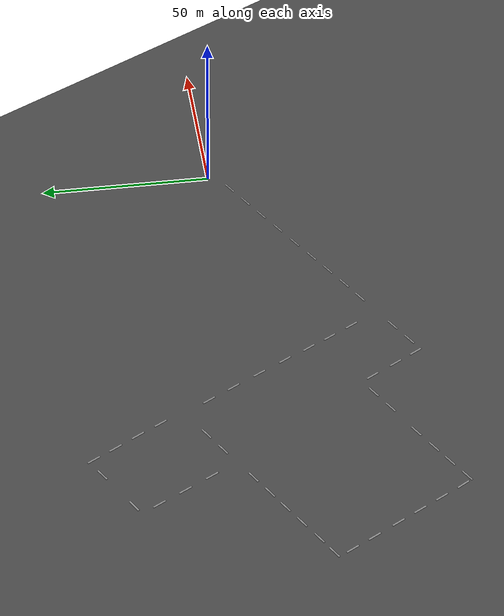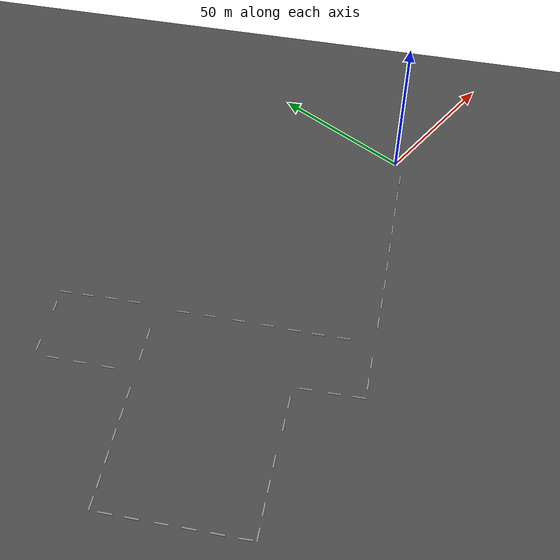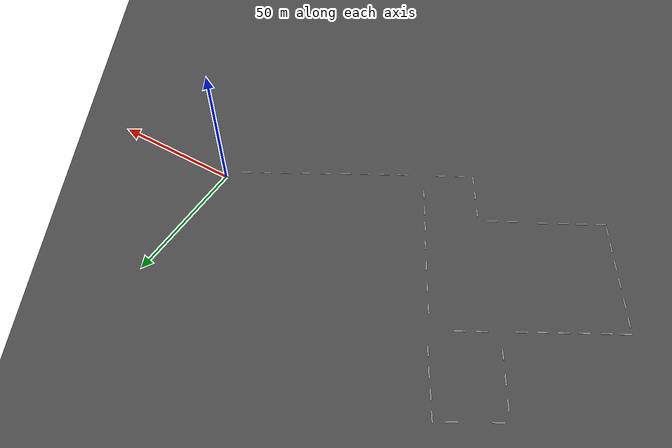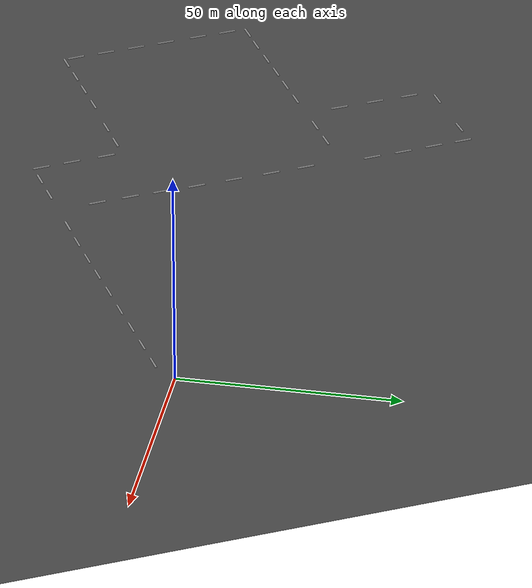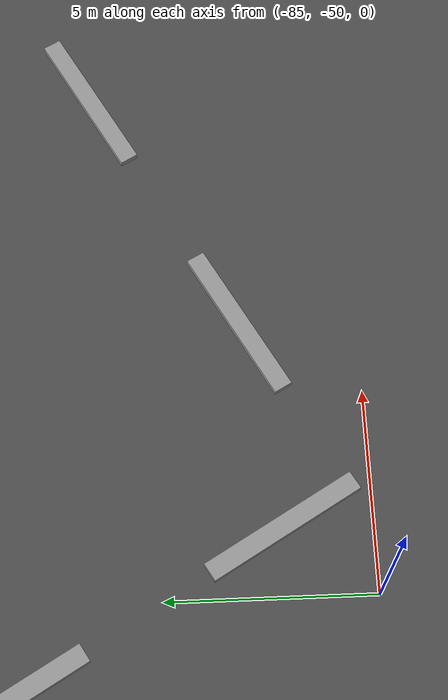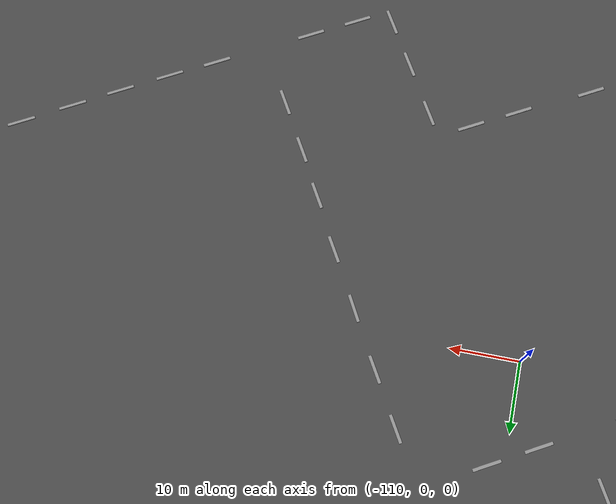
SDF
<sdf version="1.6">
 <world name="default">
  <light name="sun" type="directional">
   <pose>0 0 10 0 -0 0</pose>
   <diffuse>0.8 0.8 0.8 1</diffuse>
   <specular>0.2 0.2 0.2 1</specular>
   <attenuation>
    <range>1000</range>
    <constant>0.9</constant>
    <linear>0.01</linear>
    <quadratic>0.001</quadratic>
   </attenuation>
   <direction>-0.5 0.1 -0.9</direction>
  </light>
  <gravity>0 0 -9.8</gravity>
  <magnetic_field>6e-06 2.3e-05 -4.2e-05</magnetic_field>
  <atmosphere type="adiabatic"/>
  <physics name="default_physics" default="0" type="ode">
   <max_step_size>0.001</max_step_size>
   <real_time_factor>1</real_time_factor>
   <real_time_update_rate>1000</real_time_update_rate>
   <ode><solver><type>quick</type><iters>100</iters></solver></ode>
  </physics>
  <scene><ambient>0.4 0.4 0.4 1</ambient><background>0.7 0.7 0.7 1</background><shadows>1</shadows></scene>
  <spherical_coordinates>
   <surface_model>EARTH_WGS84</surface_model>
   <latitude_deg>10.77549</latitude_deg>
   <longitude_deg>106.65978</longitude_deg>
   <elevation>0.5</elevation>
   <heading_deg>90.0</heading_deg>
  </spherical_coordinates>
  <model name="asphalt_plane">
   <static>1</static>
   <link name="link">
    <collision name="collision"><geometry><box><size>300.002 399.998 0.1</size></box></geometry></collision>
    <visual name="visual">
     <cast_shadows>0</cast_shadows>
     <geometry><box><size>300.002 399.998 0.1</size></box></geometry>
     <material>
      <script>
       <uri>model://asphalt_plane/materials/scripts</uri>
       <uri>model://asphalt_plane/materials/textures</uri>
       <name>vrc/asphalt</name>
      </script>
     </material>
    </visual>
   </link>
   <pose>-94.7689 -9.25711 0 0 -0 0.505117</pose>
  </model>
  <model name="unit_box">
   <pose>-58.6797 -36.3175 0.134718 0 2e-06 0.510943</pose>
   <link name="link">
    <inertial>
     <mass>1</mass>
     <inertia>
      <ixx>0.166667</ixx>
      <ixy>0</ixy>
      <ixz>0</ixz>
      <iyy>0.166667</iyy>
      <iyz>0</iyz>
      <izz>0.166667</izz>
     </inertia>
    </inertial>
    <collision name="collision"><geometry><box><size>4.10992 0.470748 0.169445</size></box></geometry></collision>
    <visual name="visual">
     <geometry><box><size>4.10992 0.470748 0.169445</size></box></geometry>
     <material>
      <script><name>Gazebo/Grey</name><uri>file://media/materials/scripts/gazebo.material</uri></script>
     </material>
    </visual>
   </link>
  </model>
  <model name="unit_box_clone">
   <pose>-52.2343 -32.8002 0.134718 0 2e-06 0.510961</pose>
   <link name="link">
    <inertial>
     <mass>1</mass>
     <inertia>
      <ixx>0.166667</ixx>
      <ixy>0</ixy>
      <ixz>0</ixz>
      <iyy>0.166667</iyy>
      <iyz>0</iyz>
      <izz>0.166667</izz>
     </inertia>
    </inertial>
    <collision name="collision"><geometry><box><size>4.10992 0.423623 0.169445</size></box></geometry></collision>
    <visual name="visual">
     <geometry><box><size>4.10992 0.423623 0.169445</size></box></geometry>
     <material>
      <script><name>Gazebo/Grey</name><uri>file://media/materials/scripts/gazebo.material</uri></script>
     </material>
    </visual>
   </link>
  </model>
  <model name="unit_box_clone_clone">
   <pose>-45.605 -29.0456 0.134718 0 2e-06 0.510951</pose>
   <link name="link">
    <inertial>
     <mass>1</mass>
     <inertia>
      <ixx>0.166667</ixx>
      <ixy>0</ixy>
      <ixz>0</ixz>
      <iyy>0.166667</iyy>
      <iyz>0</iyz>
      <izz>0.166667</izz>
     </inertia>
    </inertial>
    <collision name="collision"><geometry><box><size>4.10992 0.423624 0.169445</size></box></geometry></collision>
    <visual name="visual">
     <geometry><box><size>4.10992 0.423624 0.169445</size></box></geometry>
     <material>
      <script><name>Gazebo/Grey</name><uri>file://media/materials/scripts/gazebo.material</uri></script>
     </material>
    </visual>
   </link>
  </model>
  <model name="unit_box_clone_clone_0">
   <pose>-39.235 -25.3331 0.134718 0 2e-06 0.510953</pose>
   <link name="link">
    <inertial>
     <mass>1</mass>
     <inertia>
      <ixx>0.166667</ixx>
      <ixy>0</ixy>
      <ixz>0</ixz>
      <iyy>0.166667</iyy>
      <iyz>0</iyz>
      <izz>0.166667</izz>
     </inertia>
    </inertial>
    <collision name="collision"><geometry><box><size>4.10992 0.423624 0.169445</size></box></geometry></collision>
    <visual name="visual">
     <geometry><box><size>4.10992 0.423624 0.169445</size></box></geometry>
     <material>
      <script><name>Gazebo/Grey</name><uri>file://media/materials/scripts/gazebo.material</uri></script>
     </material>
    </visual>
   </link>
  </model>
  <model name="unit_box_clone_clone_1">
   <pose>-32.4914 -21.383 0.134718 0 2e-06 0.510954</pose>
   <link name="link">
    <inertial>
     <mass>1</mass>
     <inertia>
      <ixx>0.166667</ixx>
      <ixy>0</ixy>
      <ixz>0</ixz>
      <iyy>0.166667</iyy>
      <iyz>0</iyz>
      <izz>0.166667</izz>
     </inertia>
    </inertial>
    <collision name="collision"><geometry><box><size>4.10992 0.423624 0.169445</size></box></geometry></collision>
    <visual name="visual">
     <geometry><box><size>4.10992 0.423624 0.169445</size></box></geometry>
     <material>
      <script><name>Gazebo/Grey</name><uri>file://media/materials/scripts/gazebo.material</uri></script>
     </material>
    </visual>
   </link>
  </model>
  <model name="unit_box_clone_clone_2">
   <pose>-25.515 -17.4443 0.134718 0 2e-06 0.510956</pose>
   <link name="link">
    <inertial>
     <mass>1</mass>
     <inertia>
      <ixx>0.166667</ixx>
      <ixy>0</ixy>
      <ixz>0</ixz>
      <iyy>0.166667</iyy>
      <iyz>0</iyz>
      <izz>0.166667</izz>
     </inertia>
    </inertial>
    <collision name="collision"><geometry><box><size>4.10992 0.423624 0.169445</size></box></geometry></collision>
    <visual name="visual">
     <geometry><box><size>4.10992 0.423624 0.169445</size></box></geometry>
     <material>
      <script><name>Gazebo/Grey</name><uri>file://media/materials/scripts/gazebo.material</uri></script>
     </material>
    </visual>
   </link>
  </model>
  <model name="unit_box_clone_clone_3">
   <pose>-18.7815 -13.4966 0.134718 0 2e-06 0.510957</pose>
   <link name="link">
    <inertial>
     <mass>1</mass>
     <inertia>
      <ixx>0.166667</ixx>
      <ixy>0</ixy>
      <ixz>0</ixz>
      <iyy>0.166667</iyy>
      <iyz>0</iyz>
      <izz>0.166667</izz>
     </inertia>
    </inertial>
    <collision name="collision"><geometry><box><size>4.10992 0.423624 0.169445</size></box></geometry></collision>
    <visual name="visual">
     <geometry><box><size>4.10992 0.423624 0.169445</size></box></geometry>
     <material>
      <script><name>Gazebo/Grey</name><uri>file://media/materials/scripts/gazebo.material</uri></script>
     </material>
    </visual>
   </link>
  </model>
  <model name="unit_box_clone_clone_4">
   <pose>-12.1267 -9.70191 0.134718 0 2e-06 0.510959</pose>
   <link name="link">
    <inertial>
     <mass>1</mass>
     <inertia>
      <ixx>0.166667</ixx>
      <ixy>0</ixy>
      <ixz>0</ixz>
      <iyy>0.166667</iyy>
      <iyz>0</iyz>
      <izz>0.166667</izz>
     </inertia>
    </inertial>
    <collision name="collision"><geometry><box><size>4.10992 0.423624 0.169445</size></box></geometry></collision>
    <visual name="visual">
     <geometry><box><size>4.10992 0.423624 0.169445</size></box></geometry>
     <material>
      <script><name>Gazebo/Grey</name><uri>file://media/materials/scripts/gazebo.material</uri></script>
     </material>
    </visual>
   </link>
  </model>
  <model name="unit_box_clone_clone_5">
   <pose>-5.35612 -5.84918 0.134718 0 2e-06 0.51096</pose>
   <link name="link">
    <inertial>
     <mass>1</mass>
     <inertia>
      <ixx>0.166667</ixx>
      <ixy>0</ixy>
      <ixz>0</ixz>
      <iyy>0.166667</iyy>
      <iyz>0</iyz>
      <izz>0.166667</izz>
     </inertia>
    </inertial>
    <collision name="collision"><geometry><box><size>4.10992 0.423624 0.169445</size></box></geometry></collision>
    <visual name="visual">
     <geometry><box><size>4.10992 0.423624 0.169445</size></box></geometry>
     <material>
      <script><name>Gazebo/Grey</name><uri>file://media/materials/scripts/gazebo.material</uri></script>
     </material>
    </visual>
   </link>
  </model>
  <model name="unit_box_clone_0">
   <pose>-71.6412 -43.4654 0.134718 0 2e-06 0.510938</pose>
   <link name="link">
    <inertial>
     <mass>1</mass>
     <inertia>
      <ixx>0.166667</ixx>
      <ixy>0</ixy>
      <ixz>0</ixz>
      <iyy>0.166667</iyy>
      <iyz>0</iyz>
      <izz>0.166667</izz>
     </inertia>
    </inertial>
    <collision name="collision"><geometry><box><size>4.10992 0.470749 0.169445</size></box></geometry></collision>
    <visual name="visual">
     <geometry><box><size>4.10992 0.470749 0.169445</size></box></geometry>
     <material>
      <script><name>Gazebo/Grey</name><uri>file://media/materials/scripts/gazebo.material</uri></script>
     </material>
    </visual>
   </link>
  </model>
  <model name="unit_box_clone_1">
   <pose>-78.1131 -47.0765 0.134718 0 2e-06 0.51094</pose>
   <link name="link">
    <inertial>
     <mass>1</mass>
     <inertia>
      <ixx>0.166667</ixx>
      <ixy>0</ixy>
      <ixz>0</ixz>
      <iyy>0.166667</iyy>
      <iyz>0</iyz>
      <izz>0.166667</izz>
     </inertia>
    </inertial>
    <collision name="collision"><geometry><box><size>4.10992 0.470749 0.169445</size></box></geometry></collision>
    <visual name="visual">
     <geometry><box><size>4.10992 0.470749 0.169445</size></box></geometry>
     <material>
      <script><name>Gazebo/Grey</name><uri>file://media/materials/scripts/gazebo.material</uri></script>
     </material>
    </visual>
   </link>
  </model>
  <model name="unit_box_clone_1_clone_clone_0">
   <pose>-91.3416 -34.1757 0.134718 1e-06 -2e-06 2.10461</pose>
   <link name="link">
    <inertial>
     <mass>1</mass>
     <inertia>
      <ixx>0.166667</ixx>
      <ixy>0</ixy>
      <ixz>0</ixz>
      <iyy>0.166667</iyy>
      <iyz>0</iyz>
      <izz>0.166667</izz>
     </inertia>
    </inertial>
    <collision name="collision"><geometry><box><size>4.10992 0.470749 0.169445</size></box></geometry></collision>
    <visual name="visual">
     <geometry><box><size>4.10992 0.470749 0.169445</size></box></geometry>
     <material>
      <script><name>Gazebo/Grey</name><uri>file://media/materials/scripts/gazebo.material</uri></script>
     </material>
    </visual>
   </link>
  </model>
  <model name="unit_box_clone_1_clone_0">
   <pose>-97.8327 -33.3431 0.134718 0 2e-06 0.51094</pose>
   <link name="link">
    <inertial>
     <mass>1</mass>
     <inertia>
      <ixx>0.166667</ixx>
      <ixy>0</ixy>
      <ixz>0</ixz>
      <iyy>0.166667</iyy>
      <iyz>0</iyz>
      <izz>0.166667</izz>
     </inertia>
    </inertial>
    <collision name="collision"><geometry><box><size>4.10992 0.470749 0.169445</size></box></geometry></collision>
    <visual name="visual">
     <geometry><box><size>4.10992 0.470749 0.169445</size></box></geometry>
     <material>
      <script><name>Gazebo/Grey</name><uri>file://media/materials/scripts/gazebo.material</uri></script>
     </material>
    </visual>
   </link>
  </model>
  <model name="unit_box_clone_1_clone_1">
   <pose>-104.358 -36.9162 0.134718 0 2e-06 0.510942</pose>
   <link name="link">
    <inertial>
     <mass>1</mass>
     <inertia>
      <ixx>0.166667</ixx>
      <ixy>0</ixy>
      <ixz>0</ixz>
      <iyy>0.166667</iyy>
      <iyz>0</iyz>
      <izz>0.166667</izz>
     </inertia>
    </inertial>
    <collision name="collision"><geometry><box><size>4.10992 0.470749 0.169445</size></box></geometry></collision>
    <visual name="visual">
     <geometry><box><size>4.10992 0.470749 0.169445</size></box></geometry>
     <material>
      <script><name>Gazebo/Grey</name><uri>file://media/materials/scripts/gazebo.material</uri></script>
     </material>
    </visual>
   </link>
  </model>
  <model name="unit_box_clone_1_clone_1_clone">
   <pose>-114.497 -42.1519 0.134718 0 2e-06 0.510942</pose>
   <link name="link">
    <inertial>
     <mass>1</mass>
     <inertia>
      <ixx>0.166667</ixx>
      <ixy>0</ixy>
      <ixz>0</ixz>
      <iyy>0.166667</iyy>
      <iyz>0</iyz>
      <izz>0.166667</izz>
     </inertia>
    </inertial>
    <collision name="collision"><geometry><box><size>4.10992 0.470749 0.169445</size></box></geometry></collision>
    <visual name="visual">
     <geometry><box><size>4.10992 0.470749 0.169445</size></box></geometry>
     <material>
      <script><name>Gazebo/Grey</name><uri>file://media/materials/scripts/gazebo.material</uri></script>
     </material>
    </visual>
   </link>
  </model>
  <model name="unit_box_clone_1_clone_1_clone_0">
   <pose>-121.043 -45.8422 0.134718 0 2e-06 0.510945</pose>
   <link name="link">
    <inertial>
     <mass>1</mass>
     <inertia>
      <ixx>0.166667</ixx>
      <ixy>0</ixy>
      <ixz>0</ixz>
      <iyy>0.166667</iyy>
      <iyz>0</iyz>
      <izz>0.166667</izz>
     </inertia>
    </inertial>
    <collision name="collision"><geometry><box><size>4.10992 0.470749 0.169445</size></box></geometry></collision>
    <visual name="visual">
     <geometry><box><size>4.10992 0.470749 0.169445</size></box></geometry>
     <material>
      <script><name>Gazebo/Grey</name><uri>file://media/materials/scripts/gazebo.material</uri></script>
     </material>
    </visual>
   </link>
  </model>
  <model name="unit_box_clone_1_clone_1_clone_1">
   <pose>-126.85 -49.0941 0.134718 0 2e-06 0.510946</pose>
   <link name="link">
    <inertial>
     <mass>1</mass>
     <inertia>
      <ixx>0.166667</ixx>
      <ixy>0</ixy>
      <ixz>0</ixz>
      <iyy>0.166667</iyy>
      <iyz>0</iyz>
      <izz>0.166667</izz>
     </inertia>
    </inertial>
    <collision name="collision"><geometry><box><size>4.10992 0.470749 0.169445</size></box></geometry></collision>
    <visual name="visual">
     <geometry><box><size>4.10992 0.470749 0.169445</size></box></geometry>
     <material>
      <script><name>Gazebo/Grey</name><uri>file://media/materials/scripts/gazebo.material</uri></script>
     </material>
    </visual>
   </link>
  </model>
  <model name="unit_box_clone_1_clone_clone_1">
   <pose>-155.018 -17.5807 0.134717 0 2e-06 2.08642</pose>
   <link name="link">
    <inertial>
     <mass>1</mass>
     <inertia>
      <ixx>0.166667</ixx>
      <ixy>0</ixy>
      <ixz>0</ixz>
      <iyy>0.166667</iyy>
      <iyz>0</iyz>
      <izz>0.166667</izz>
     </inertia>
    </inertial>
    <collision name="collision"><geometry><box><size>4.10992 0.470749 0.169445</size></box></geometry></collision>
    <visual name="visual">
     <geometry><box><size>4.10992 0.470749 0.169445</size></box></geometry>
     <material>
      <script><name>Gazebo/Grey</name><uri>file://media/materials/scripts/gazebo.material</uri></script>
     </material>
    </visual>
   </link>
  </model>
  <model name="unit_box_clone_1_clone_clone_2">
   <pose>-151.376 -24.0661 0.134717 0 2e-06 2.08809</pose>
   <link name="link">
    <inertial>
     <mass>1</mass>
     <inertia>
      <ixx>0.166667</ixx>
      <ixy>0</ixy>
      <ixz>0</ixz>
      <iyy>0.166667</iyy>
      <iyz>0</iyz>
      <izz>0.166667</izz>
     </inertia>
    </inertial>
    <collision name="collision"><geometry><box><size>4.10992 0.470749 0.169445</size></box></geometry></collision>
    <visual name="visual">
     <geometry><box><size>4.10992 0.470749 0.169445</size></box></geometry>
     <material>
      <script><name>Gazebo/Grey</name><uri>file://media/materials/scripts/gazebo.material</uri></script>
     </material>
    </visual>
   </link>
  </model>
  <model name="unit_box_clone_1_clone_clone_1_clone_0">
   <pose>-143.528 -37.7176 0.134717 0 2e-06 2.08642</pose>
   <link name="link">
    <inertial>
     <mass>1</mass>
     <inertia>
      <ixx>0.166667</ixx>
      <ixy>0</ixy>
      <ixz>0</ixz>
      <iyy>0.166667</iyy>
      <iyz>0</iyz>
      <izz>0.166667</izz>
     </inertia>
    </inertial>
    <collision name="collision"><geometry><box><size>4.10992 0.470749 0.169445</size></box></geometry></collision>
    <visual name="visual">
     <geometry><box><size>4.10992 0.470749 0.169445</size></box></geometry>
     <material>
      <script><name>Gazebo/Grey</name><uri>file://media/materials/scripts/gazebo.material</uri></script>
     </material>
    </visual>
   </link>
  </model>
  <model name="unit_box_clone_1_clone_clone_1_clone_1">
   <pose>-139.771 -44.3301 0.134717 0 2e-06 2.08642</pose>
   <link name="link">
    <inertial>
     <mass>1</mass>
     <inertia>
      <ixx>0.166667</ixx>
      <ixy>0</ixy>
      <ixz>0</ixz>
      <iyy>0.166667</iyy>
      <iyz>0</iyz>
      <izz>0.166667</izz>
     </inertia>
    </inertial>
    <collision name="collision"><geometry><box><size>4.10992 0.470749 0.169445</size></box></geometry></collision>
    <visual name="visual">
     <geometry><box><size>4.10992 0.470749 0.169445</size></box></geometry>
     <material>
      <script><name>Gazebo/Grey</name><uri>file://media/materials/scripts/gazebo.material</uri></script>
     </material>
    </visual>
   </link>
  </model>
  <model name="unit_box_clone_1_clone_clone_1_clone_2">
   <pose>-136.03 -50.9037 0.134723 0 -0 2.12656</pose>
   <link name="link">
    <inertial>
     <mass>1</mass>
     <inertia>
      <ixx>0.166667</ixx>
      <ixy>0</ixy>
      <ixz>0</ixz>
      <iyy>0.166667</iyy>
      <iyz>0</iyz>
      <izz>0.166667</izz>
     </inertia>
    </inertial>
    <collision name="collision"><geometry><box><size>4.10992 0.470749 0.169445</size></box></geometry></collision>
    <visual name="visual">
     <geometry><box><size>4.10992 0.470749 0.169445</size></box></geometry>
     <material>
      <script><name>Gazebo/Grey</name><uri>file://media/materials/scripts/gazebo.material</uri></script>
     </material>
    </visual>
   </link>
  </model>
  <model name="unit_box_clone_1_clone_1_clone_1_clone">
   <pose>-132.933 -52.5795 0.134718 0 2e-06 0.510945</pose>
   <link name="link">
    <inertial>
     <mass>1</mass>
     <inertia>
      <ixx>0.166667</ixx>
      <ixy>0</ixy>
      <ixz>0</ixz>
      <iyy>0.166667</iyy>
      <iyz>0</iyz>
      <izz>0.166667</izz>
     </inertia>
    </inertial>
    <collision name="collision"><geometry><box><size>4.10992 0.470749 0.169445</size></box></geometry></collision>
    <visual name="visual">
     <geometry><box><size>4.10992 0.470749 0.169445</size></box></geometry>
     <material>
      <script><name>Gazebo/Grey</name><uri>file://media/materials/scripts/gazebo.material</uri></script>
     </material>
    </visual>
   </link>
  </model>
  <model name="unit_box_clone_1_clone_1_clone_0_clone">
   <pose>-137.636 -2.42573 0.134718 0 2e-06 0.510947</pose>
   <link name="link">
    <inertial>
     <mass>1</mass>
     <inertia>
      <ixx>0.166667</ixx>
      <ixy>0</ixy>
      <ixz>0</ixz>
      <iyy>0.166667</iyy>
      <iyz>0</iyz>
      <izz>0.166667</izz>
     </inertia>
    </inertial>
    <collision name="collision"><geometry><box><size>4.10992 0.470749 0.169445</size></box></geometry></collision>
    <visual name="visual">
     <geometry><box><size>4.10992 0.470749 0.169445</size></box></geometry>
     <material>
      <script><name>Gazebo/Grey</name><uri>file://media/materials/scripts/gazebo.material</uri></script>
     </material>
    </visual>
   </link>
  </model>
  <model name="unit_box_clone_1_clone_1_clone_0_clone_0">
   <pose>-143.643 -5.91832 0.134718 0 2e-06 0.510948</pose>
   <link name="link">
    <inertial>
     <mass>1</mass>
     <inertia>
      <ixx>0.166667</ixx>
      <ixy>0</ixy>
      <ixz>0</ixz>
      <iyy>0.166667</iyy>
      <iyz>0</iyz>
      <izz>0.166667</izz>
     </inertia>
    </inertial>
    <collision name="collision"><geometry><box><size>4.10992 0.470749 0.169445</size></box></geometry></collision>
    <visual name="visual">
     <geometry><box><size>4.10992 0.470749 0.169445</size></box></geometry>
     <material>
      <script><name>Gazebo/Grey</name><uri>file://media/materials/scripts/gazebo.material</uri></script>
     </material>
    </visual>
   </link>
  </model>
  <model name="unit_box_clone_1_clone_1_clone_0_clone_1">
   <pose>-149.954 -9.56564 0.134718 0 2e-06 0.51095</pose>
   <link name="link">
    <inertial>
     <mass>1</mass>
     <inertia>
      <ixx>0.166667</ixx>
      <ixy>0</ixy>
      <ixz>0</ixz>
      <iyy>0.166667</iyy>
      <iyz>0</iyz>
      <izz>0.166667</izz>
     </inertia>
    </inertial>
    <collision name="collision"><geometry><box><size>4.10992 0.470749 0.169445</size></box></geometry></collision>
    <visual name="visual">
     <geometry><box><size>4.10992 0.470749 0.169445</size></box></geometry>
     <material>
      <script><name>Gazebo/Grey</name><uri>file://media/materials/scripts/gazebo.material</uri></script>
     </material>
    </visual>
   </link>
  </model>
  <model name="unit_box_clone_1_clone_1_clone_0_clone_clone">
   <pose>-131.788 0.84519 0.134718 0 2e-06 0.510946</pose>
   <link name="link">
    <inertial>
     <mass>1</mass>
     <inertia>
      <ixx>0.166667</ixx>
      <ixy>0</ixy>
      <ixz>0</ixz>
      <iyy>0.166667</iyy>
      <iyz>0</iyz>
      <izz>0.166667</izz>
     </inertia>
    </inertial>
    <collision name="collision"><geometry><box><size>4.10992 0.470749 0.169445</size></box></geometry></collision>
    <visual name="visual">
     <geometry><box><size>4.10992 0.470749 0.169445</size></box></geometry>
     <material>
      <script><name>Gazebo/Grey</name><uri>file://media/materials/scripts/gazebo.material</uri></script>
     </material>
    </visual>
   </link>
  </model>
  <model name="unit_box_clone_1_clone_1_clone_0_clone_clone_0">
   <pose>-125.667 4.39838 0.134718 0 2e-06 0.510948</pose>
   <link name="link">
    <inertial>
     <mass>1</mass>
     <inertia>
      <ixx>0.166667</ixx>
      <ixy>0</ixy>
      <ixz>0</ixz>
      <iyy>0.166667</iyy>
      <iyz>0</iyz>
      <izz>0.166667</izz>
     </inertia>
    </inertial>
    <collision name="collision"><geometry><box><size>4.10992 0.470749 0.169445</size></box></geometry></collision>
    <visual name="visual">
     <geometry><box><size>4.10992 0.470749 0.169445</size></box></geometry>
     <material>
      <script><name>Gazebo/Grey</name><uri>file://media/materials/scripts/gazebo.material</uri></script>
     </material>
    </visual>
   </link>
  </model>
  <model name="unit_box_clone_1_clone_clone_1_clone_3">
   <pose>-123.556 15.3324 0.134717 0 2e-06 2.08641</pose>
   <link name="link">
    <inertial>
     <mass>1</mass>
     <inertia>
      <ixx>0.166667</ixx>
      <ixy>0</ixy>
      <ixz>0</ixz>
      <iyy>0.166667</iyy>
      <iyz>0</iyz>
      <izz>0.166667</izz>
     </inertia>
    </inertial>
    <collision name="collision"><geometry><box><size>4.10992 0.470749 0.169445</size></box></geometry></collision>
    <visual name="visual">
     <geometry><box><size>4.10992 0.470749 0.169445</size></box></geometry>
     <material>
      <script><name>Gazebo/Grey</name><uri>file://media/materials/scripts/gazebo.material</uri></script>
     </material>
    </visual>
   </link>
  </model>
  <model name="unit_box_clone_1_clone_clone_1_clone_4">
   <pose>-127.878 23.0939 0.134717 0 2e-06 2.08641</pose>
   <link name="link">
    <inertial>
     <mass>1</mass>
     <inertia>
      <ixx>0.166667</ixx>
      <ixy>0</ixy>
      <ixz>0</ixz>
      <iyy>0.166667</iyy>
      <iyz>0</iyz>
      <izz>0.166667</izz>
     </inertia>
    </inertial>
    <collision name="collision"><geometry><box><size>4.10992 0.470749 0.169445</size></box></geometry></collision>
    <visual name="visual">
     <geometry><box><size>4.10992 0.470749 0.169445</size></box></geometry>
     <material>
      <script><name>Gazebo/Grey</name><uri>file://media/materials/scripts/gazebo.material</uri></script>
     </material>
    </visual>
   </link>
  </model>
  <model name="unit_box_clone_1_clone_1_clone_0_clone_clone_0_clone">
   <pose>-114.159 11.0703 0.134718 0 2e-06 0.510948</pose>
   <link name="link">
    <inertial>
     <mass>1</mass>
     <inertia>
      <ixx>0.166667</ixx>
      <ixy>0</ixy>
      <ixz>0</ixz>
      <iyy>0.166667</iyy>
      <iyz>0</iyz>
      <izz>0.166667</izz>
     </inertia>
    </inertial>
    <collision name="collision"><geometry><box><size>4.10992 0.470749 0.169445</size></box></geometry></collision>
    <visual name="visual">
     <geometry><box><size>4.10992 0.470749 0.169445</size></box></geometry>
     <material>
      <script><name>Gazebo/Grey</name><uri>file://media/materials/scripts/gazebo.material</uri></script>
     </material>
    </visual>
   </link>
  </model>
  <model name="unit_box_clone_1_clone_1_clone_0_clone_clone_0_clone_0">
   <pose>-107.629 14.7471 0.134718 0 2e-06 0.51095</pose>
   <link name="link">
    <inertial>
     <mass>1</mass>
     <inertia>
      <ixx>0.166667</ixx>
      <ixy>0</ixy>
      <ixz>0</ixz>
      <iyy>0.166667</iyy>
      <iyz>0</iyz>
      <izz>0.166667</izz>
     </inertia>
    </inertial>
    <collision name="collision"><geometry><box><size>4.10992 0.470749 0.169445</size></box></geometry></collision>
    <visual name="visual">
     <geometry><box><size>4.10992 0.470749 0.169445</size></box></geometry>
     <material>
      <script><name>Gazebo/Grey</name><uri>file://media/materials/scripts/gazebo.material</uri></script>
     </material>
    </visual>
   </link>
  </model>
  <model name="unit_box_clone_1_clone_1_clone_0_clone_clone_0_clone_clone">
   <pose>-131.839 37.3576 0.134704 0 -9e-06 0.514136</pose>
   <link name="link">
    <inertial>
     <mass>1</mass>
     <inertia>
      <ixx>0.166667</ixx>
      <ixy>0</ixy>
      <ixz>0</ixz>
      <iyy>0.166667</iyy>
      <iyz>0</iyz>
      <izz>0.166667</izz>
     </inertia>
    </inertial>
    <collision name="collision"><geometry><box><size>4.10992 0.470749 0.169445</size></box></geometry></collision>
    <visual name="visual">
     <geometry><box><size>4.10992 0.470749 0.169445</size></box></geometry>
     <material>
      <script><name>Gazebo/Grey</name><uri>file://media/materials/scripts/gazebo.material</uri></script>
     </material>
    </visual>
   </link>
  </model>
  <model name="unit_box_clone_1_clone_clone_1_clone_3_clone_1">
   <pose>-113.329 46.2603 0.134718 1e-06 -2e-06 2.10372</pose>
   <link name="link">
    <inertial>
     <mass>1</mass>
     <inertia>
      <ixx>0.166667</ixx>
      <ixy>0</ixy>
      <ixz>0</ixz>
      <iyy>0.166667</iyy>
      <iyz>0</iyz>
      <izz>0.166667</izz>
     </inertia>
    </inertial>
    <collision name="collision"><geometry><box><size>4.10992 0.470749 0.169445</size></box></geometry></collision>
    <visual name="visual">
     <geometry><box><size>4.10992 0.470749 0.169445</size></box></geometry>
     <material>
      <script><name>Gazebo/Grey</name><uri>file://media/materials/scripts/gazebo.material</uri></script>
     </material>
    </visual>
   </link>
  </model>
  <model name="unit_box_clone_1_clone_clone_1_clone_3_clone_1_clone">
   <pose>-109.689 39.9586 0.134718 1e-06 -2e-06 2.10372</pose>
   <link name="link">
    <inertial>
     <mass>1</mass>
     <inertia>
      <ixx>0.166667</ixx>
      <ixy>0</ixy>
      <ixz>0</ixz>
      <iyy>0.166667</iyy>
      <iyz>0</iyz>
      <izz>0.166667</izz>
     </inertia>
    </inertial>
    <collision name="collision"><geometry><box><size>4.10992 0.470749 0.169445</size></box></geometry></collision>
    <visual name="visual">
     <geometry><box><size>4.10992 0.470749 0.169445</size></box></geometry>
     <material>
      <script><name>Gazebo/Grey</name><uri>file://media/materials/scripts/gazebo.material</uri></script>
     </material>
    </visual>
   </link>
  </model>
  <model name="unit_box_clone_1_clone_clone_1_clone_3_clone_1_clone_0">
   <pose>-105.724 33.3719 0.134718 0 -2e-06 2.10372</pose>
   <link name="link">
    <inertial>
     <mass>1</mass>
     <inertia>
      <ixx>0.166667</ixx>
      <ixy>0</ixy>
      <ixz>0</ixz>
      <iyy>0.166667</iyy>
      <iyz>0</iyz>
      <izz>0.166667</izz>
     </inertia>
    </inertial>
    <collision name="collision"><geometry><box><size>4.10992 0.470749 0.169445</size></box></geometry></collision>
    <visual name="visual">
     <geometry><box><size>4.10992 0.470749 0.169445</size></box></geometry>
     <material>
      <script><name>Gazebo/Grey</name><uri>file://media/materials/scripts/gazebo.material</uri></script>
     </material>
    </visual>
   </link>
  </model>
  <model name="unit_box_clone_1_clone_clone_1_clone_3_clone_1_clone_1">
   <pose>-101.919 26.6834 0.134718 -1e-06 2e-06 2.10372</pose>
   <link name="link">
    <inertial>
     <mass>1</mass>
     <inertia>
      <ixx>0.166667</ixx>
      <ixy>0</ixy>
      <ixz>0</ixz>
      <iyy>0.166667</iyy>
      <iyz>0</iyz>
      <izz>0.166667</izz>
     </inertia>
    </inertial>
    <collision name="collision"><geometry><box><size>4.10992 0.470749 0.169445</size></box></geometry></collision>
    <visual name="visual">
     <geometry><box><size>4.10992 0.470749 0.169445</size></box></geometry>
     <material>
      <script><name>Gazebo/Grey</name><uri>file://media/materials/scripts/gazebo.material</uri></script>
     </material>
    </visual>
   </link>
  </model>
  <model name="unit_box_clone_1_clone_clone_1_clone_3_clone_1_clone_1_clone_2">
   <pose>-86.0376 -3.01399 0.134723 0 -0 2.0793</pose>
   <link name="link">
    <inertial>
     <mass>1</mass>
     <inertia>
      <ixx>0.166667</ixx>
      <ixy>0</ixy>
      <ixz>0</ixz>
      <iyy>0.166667</iyy>
      <iyz>0</iyz>
      <izz>0.166667</izz>
     </inertia>
    </inertial>
    <collision name="collision"><geometry><box><size>4.10992 0.470749 0.169445</size></box></geometry></collision>
    <visual name="visual">
     <geometry><box><size>4.10992 0.470749 0.169445</size></box></geometry>
     <material>
      <script><name>Gazebo/Grey</name><uri>file://media/materials/scripts/gazebo.material</uri></script>
     </material>
    </visual>
   </link>
  </model>
  <model name="unit_box_clone_1_clone_clone_1_clone_3_clone_1_clone_1_clone_3">
   <pose>-81.6204 -10.9019 0.134718 -0 -2e-06 2.10373</pose>
   <link name="link">
    <inertial>
     <mass>1</mass>
     <inertia>
      <ixx>0.166667</ixx>
      <ixy>0</ixy>
      <ixz>0</ixz>
      <iyy>0.166667</iyy>
      <iyz>0</iyz>
      <izz>0.166667</izz>
     </inertia>
    </inertial>
    <collision name="collision"><geometry><box><size>4.10992 0.470749 0.169445</size></box></geometry></collision>
    <visual name="visual">
     <geometry><box><size>4.10992 0.470749 0.169445</size></box></geometry>
     <material>
      <script><name>Gazebo/Grey</name><uri>file://media/materials/scripts/gazebo.material</uri></script>
     </material>
    </visual>
   </link>
  </model>
  <model name="unit_box_clone_1_clone_clone_1_clone_3_clone_1_clone_1_clone_4">
   <pose>-77.6366 -18.3887 0.134718 -1e-06 2e-06 2.10373</pose>
   <link name="link">
    <inertial>
     <mass>1</mass>
     <inertia>
      <ixx>0.166667</ixx>
      <ixy>0</ixy>
      <ixz>0</ixz>
      <iyy>0.166667</iyy>
      <iyz>0</iyz>
      <izz>0.166667</izz>
     </inertia>
    </inertial>
    <collision name="collision"><geometry><box><size>4.10992 0.470749 0.169445</size></box></geometry></collision>
    <visual name="visual">
     <geometry><box><size>4.10992 0.470749 0.169445</size></box></geometry>
     <material>
      <script><name>Gazebo/Grey</name><uri>file://media/materials/scripts/gazebo.material</uri></script>
     </material>
    </visual>
   </link>
  </model>
  <model name="unit_box_clone_1_clone_clone_1_clone_3_clone_1_clone_1_clone_4_clone">
   <pose>-74.0716 -24.9142 0.134718 -0 -2e-06 2.10373</pose>
   <link name="link">
    <inertial>
     <mass>1</mass>
     <inertia>
      <ixx>0.166667</ixx>
      <ixy>0</ixy>
      <ixz>0</ixz>
      <iyy>0.166667</iyy>
      <iyz>0</iyz>
      <izz>0.166667</izz>
     </inertia>
    </inertial>
    <collision name="collision"><geometry><box><size>4.10992 0.470749 0.169445</size></box></geometry></collision>
    <visual name="visual">
     <geometry><box><size>4.10992 0.470749 0.169445</size></box></geometry>
     <material>
      <script><name>Gazebo/Grey</name><uri>file://media/materials/scripts/gazebo.material</uri></script>
     </material>
    </visual>
   </link>
  </model>
  <model name="unit_box_clone_1_clone_clone_1_clone_3_clone_1_clone_1_clone_4_clone_clone">
   <pose>-70.1154 -31.8125 0.134718 1e-06 -2e-06 2.10373</pose>
   <link name="link">
    <inertial>
     <mass>1</mass>
     <inertia>
      <ixx>0.166667</ixx>
      <ixy>0</ixy>
      <ixz>0</ixz>
      <iyy>0.166667</iyy>
      <iyz>0</iyz>
      <izz>0.166667</izz>
     </inertia>
    </inertial>
    <collision name="collision"><geometry><box><size>4.10992 0.470749 0.169445</size></box></geometry></collision>
    <visual name="visual">
     <geometry><box><size>4.10992 0.470749 0.169445</size></box></geometry>
     <material>
      <script><name>Gazebo/Grey</name><uri>file://media/materials/scripts/gazebo.material</uri></script>
     </material>
    </visual>
   </link>
  </model>
  <model name="unit_box_clone_1_clone_clone_2_clone">
   <pose>-147.301 -31.1807 0.134717 0 2e-06 2.08809</pose>
   <link name="link">
    <inertial>
     <mass>1</mass>
     <inertia>
      <ixx>0.166667</ixx>
      <ixy>0</ixy>
      <ixz>0</ixz>
      <iyy>0.166667</iyy>
      <iyz>0</iyz>
      <izz>0.166667</izz>
     </inertia>
    </inertial>
    <collision name="collision"><geometry><box><size>4.10992 0.470749 0.169445</size></box></geometry></collision>
    <visual name="visual">
     <geometry><box><size>4.10992 0.470749 0.169445</size></box></geometry>
     <material>
      <script><name>Gazebo/Grey</name><uri>file://media/materials/scripts/gazebo.material</uri></script>
     </material>
    </visual>
   </link>
  </model>
  <model name="unit_box_clone_1_clone_1_clone_0_clone_1_clone">
   <pose>-155.514 -12.6412 0.134718 0 2e-06 0.510951</pose>
   <link name="link">
    <inertial>
     <mass>1</mass>
     <inertia>
      <ixx>0.166667</ixx>
      <ixy>0</ixy>
      <ixz>0</ixz>
      <iyy>0.166667</iyy>
      <iyz>0</iyz>
      <izz>0.166667</izz>
     </inertia>
    </inertial>
    <collision name="collision"><geometry><box><size>4.10992 0.470749 0.169445</size></box></geometry></collision>
    <visual name="visual">
     <geometry><box><size>4.10992 0.470749 0.169445</size></box></geometry>
     <material>
      <script><name>Gazebo/Grey</name><uri>file://media/materials/scripts/gazebo.material</uri></script>
     </material>
    </visual>
   </link>
  </model>
  <model name="unit_box_clone_1_clone_clone_1_clone_3_clone_1_clone_1_clone_3_clone">
   <pose>-90.4815 4.89845 0.134718 -1e-06 2e-06 2.10373</pose>
   <link name="link">
    <inertial>
     <mass>1</mass>
     <inertia>
      <ixx>0.166667</ixx>
      <ixy>0</ixy>
      <ixz>0</ixz>
      <iyy>0.166667</iyy>
      <iyz>0</iyz>
      <izz>0.166667</izz>
     </inertia>
    </inertial>
    <collision name="collision"><geometry><box><size>4.10992 0.470749 0.169445</size></box></geometry></collision>
    <visual name="visual">
     <geometry><box><size>4.10992 0.470749 0.169445</size></box></geometry>
     <material>
      <script><name>Gazebo/Grey</name><uri>file://media/materials/scripts/gazebo.material</uri></script>
     </material>
    </visual>
   </link>
  </model>
  <model name="unit_box_clone_1_clone_clone_1_clone_3_clone_1_clone_1_clone_3_clone_0">
   <pose>-94.7347 12.3272 0.134723 0 -0 2.10373</pose>
   <link name="link">
    <inertial>
     <mass>1</mass>
     <inertia>
      <ixx>0.166667</ixx>
      <ixy>0</ixy>
      <ixz>0</ixz>
      <iyy>0.166667</iyy>
      <iyz>0</iyz>
      <izz>0.166667</izz>
     </inertia>
    </inertial>
    <collision name="collision"><geometry><box><size>4.10992 0.470749 0.169445</size></box></geometry></collision>
    <visual name="visual">
     <geometry><box><size>4.10992 0.470749 0.169445</size></box></geometry>
     <material>
      <script><name>Gazebo/Grey</name><uri>file://media/materials/scripts/gazebo.material</uri></script>
     </material>
    </visual>
   </link>
  </model>
  <model name="unit_box_clone_1_clone_1_clone_0_clone_clone_0_clone_clone_clone">
   <pose>-119.273 44.5317 0.134718 -0 -2e-06 0.537812</pose>
   <link name="link">
    <inertial>
     <mass>1</mass>
     <inertia>
      <ixx>0.166667</ixx>
      <ixy>0</ixy>
      <ixz>0</ixz>
      <iyy>0.166667</iyy>
      <iyz>0</iyz>
      <izz>0.166667</izz>
     </inertia>
    </inertial>
    <collision name="collision"><geometry><box><size>4.10992 0.470749 0.169445</size></box></geometry></collision>
    <visual name="visual">
     <geometry><box><size>4.10992 0.470749 0.169445</size></box></geometry>
     <material>
      <script><name>Gazebo/Grey</name><uri>file://media/materials/scripts/gazebo.material</uri></script>
     </material>
    </visual>
   </link>
  </model>
  <model name="unit_box_clone_1_clone_clone_0_clone">
   <pose>-87.1464 -41.4407 0.134718 -0 -2e-06 2.10461</pose>
   <link name="link">
    <inertial>
     <mass>1</mass>
     <inertia>
      <ixx>0.166667</ixx>
      <ixy>0</ixy>
      <ixz>0</ixz>
      <iyy>0.166667</iyy>
      <iyz>0</iyz>
      <izz>0.166667</izz>
     </inertia>
    </inertial>
    <collision name="collision"><geometry><box><size>4.10992 0.470749 0.169445</size></box></geometry></collision>
    <visual name="visual">
     <geometry><box><size>4.10992 0.470749 0.169445</size></box></geometry>
     <material>
      <script><name>Gazebo/Grey</name><uri>file://media/materials/scripts/gazebo.material</uri></script>
     </material>
    </visual>
   </link>
  </model>
  <model name="unit_box_clone_1_clone_clone_0_clone_0">
   <pose>-83.3411 -47.8687 0.134718 -0 -2e-06 2.10461</pose>
   <link name="link">
    <inertial>
     <mass>1</mass>
     <inertia>
      <ixx>0.166667</ixx>
      <ixy>0</ixy>
      <ixz>0</ixz>
      <iyy>0.166667</iyy>
      <iyz>0</iyz>
      <izz>0.166667</izz>
     </inertia>
    </inertial>
    <collision name="collision"><geometry><box><size>4.10992 0.470749 0.169445</size></box></geometry></collision>
    <visual name="visual">
     <geometry><box><size>4.10992 0.470749 0.169445</size></box></geometry>
     <material>
      <script><name>Gazebo/Grey</name><uri>file://media/materials/scripts/gazebo.material</uri></script>
     </material>
    </visual>
   </link>
  </model>
  <model name="unit_box_clone_1_clone_clone_1_clone_4_clone">
   <pose>-132.03 30.5944 0.134723 0 -0 2.08641</pose>
   <link name="link">
    <inertial>
     <mass>1</mass>
     <inertia>
      <ixx>0.166667</ixx>
      <ixy>0</ixy>
      <ixz>0</ixz>
      <iyy>0.166667</iyy>
      <iyz>0</iyz>
      <izz>0.166667</izz>
     </inertia>
    </inertial>
    <collision name="collision"><geometry><box><size>4.10992 0.470749 0.169445</size></box></geometry></collision>
    <visual name="visual">
     <geometry><box><size>4.10992 0.470749 0.169445</size></box></geometry>
     <material>
      <script><name>Gazebo/Grey</name><uri>file://media/materials/scripts/gazebo.material</uri></script>
     </material>
    </visual>
   </link>
  </model>
 </world>
</sdf>
